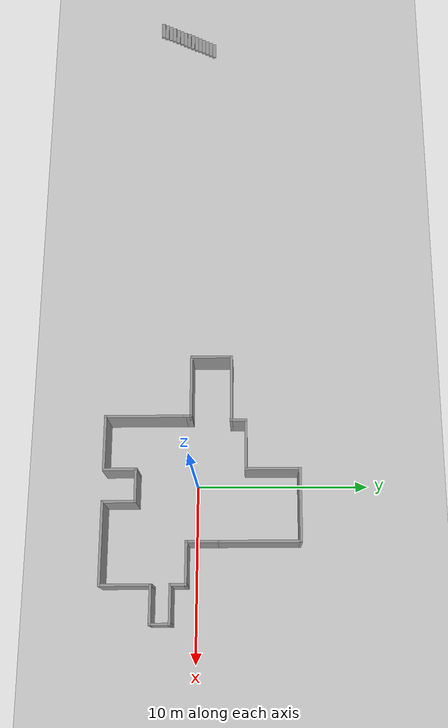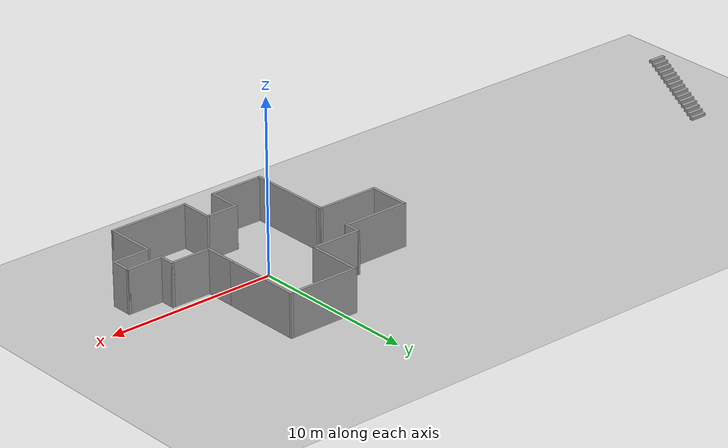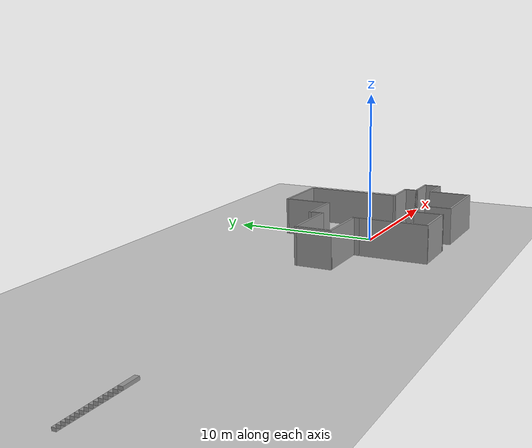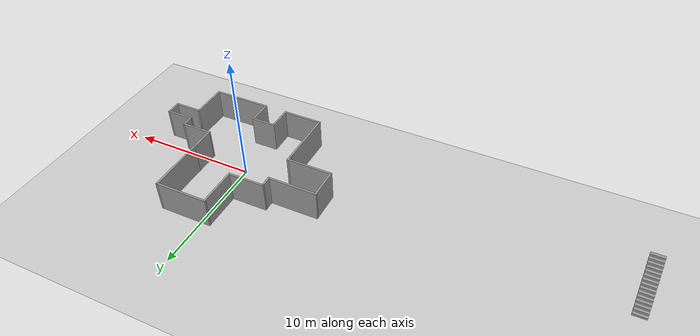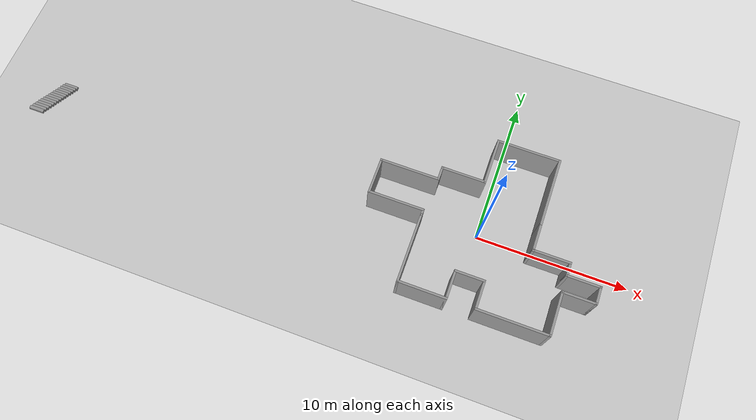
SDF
<sdf version="1.6">
 <world name="default">
  <light name="sun" type="directional">
   <pose>0 0 10 0 -0 0</pose>
   <diffuse>0.8 0.8 0.8 1</diffuse>
   <specular>0.2 0.2 0.2 1</specular>
   <attenuation>
    <range>1000</range>
    <constant>0.9</constant>
    <linear>0.01</linear>
    <quadratic>0.001</quadratic>
   </attenuation>
   <direction>-0.5 0.1 -0.9</direction>
  </light>
  <model name="ground_plane">
   <static>1</static>
   <link name="link">
    <collision name="collision">
     <geometry><plane><normal>0 0 1</normal><size>100 100</size></plane></geometry>
     <surface>
      <contact><collide_bitmask>65535</collide_bitmask></contact>
      <friction><ode><mu>100</mu><mu2>50</mu2></ode></friction>
     </surface>
    </collision>
    <visual name="visual">
     <cast_shadows>0</cast_shadows>
     <geometry><plane><normal>0 0 1</normal><size>100 100</size></plane></geometry>
     <material>
      <script><uri>file://media/materials/scripts/gazebo.material</uri><name>Gazebo/Grey</name></script>
     </material>
    </visual>
   </link>
  </model>
  <gravity>0 0 -9.8</gravity>
  <magnetic_field>6e-06 2.3e-05 -4.2e-05</magnetic_field>
  <atmosphere type="adiabatic"/>
  <physics name="default_physics" default="0" type="ode">
   <max_step_size>0.001</max_step_size>
   <real_time_factor>1</real_time_factor>
   <real_time_update_rate>1000</real_time_update_rate>
  </physics>
  <scene><ambient>0.4 0.4 0.4 1</ambient><background>0.7 0.7 0.7 1</background><shadows>1</shadows></scene>
  <spherical_coordinates>
   <surface_model>EARTH_WGS84</surface_model>
   <latitude_deg>0</latitude_deg>
   <longitude_deg>0</longitude_deg>
   <elevation>0</elevation>
   <heading_deg>0</heading_deg>
  </spherical_coordinates>
  <model name="room">
   <pose>-11.2576 0.320719 0 0 -0 0</pose>
   <link name="Stairs_0">
    <visual name="Stairs_0_Visual_0">
     <pose>-18.7163 0.414054 0.083333 0 -0 0</pose>
     <geometry><box><size>1 0.233333 0.166667</size></box></geometry>
     <material>
      <script><uri>file://media/materials/scripts/gazebo.material</uri><name>Gazebo/Grey</name></script>
      <ambient>0 0 0 1</ambient>
     </material>
     <meta><layer>0</layer></meta>
    </visual>
    <collision name="Stairs_0_Collision_0">
     <geometry><box><size>1 0.233333 0.166667</size></box></geometry>
     <pose>-18.7163 0.414054 0.083333 0 -0 0</pose>
    </collision>
    <visual name="Stairs_0_Visual_1">
     <pose>-18.7163 0.180721 0.25 0 -0 0</pose>
     <geometry><box><size>1 0.233333 0.166667</size></box></geometry>
     <material>
      <script><uri>file://media/materials/scripts/gazebo.material</uri><name>Gazebo/Grey</name></script>
      <ambient>0 0 0 1</ambient>
     </material>
     <meta><layer>0</layer></meta>
    </visual>
    <collision name="Stairs_0_Collision_1">
     <geometry><box><size>1 0.233333 0.166667</size></box></geometry>
     <pose>-18.7163 0.180721 0.25 0 -0 0</pose>
    </collision>
    <visual name="Stairs_0_Visual_2">
     <pose>-18.7163 -0.052612 0.416667 0 -0 0</pose>
     <geometry><box><size>1 0.233333 0.166667</size></box></geometry>
     <material>
      <script><uri>file://media/materials/scripts/gazebo.material</uri><name>Gazebo/Grey</name></script>
      <ambient>0 0 0 1</ambient>
     </material>
     <meta><layer>0</layer></meta>
    </visual>
    <collision name="Stairs_0_Collision_2">
     <geometry><box><size>1 0.233333 0.166667</size></box></geometry>
     <pose>-18.7163 -0.052612 0.416667 0 -0 0</pose>
    </collision>
    <visual name="Stairs_0_Visual_3">
     <pose>-18.7163 -0.285945 0.583333 0 -0 0</pose>
     <geometry><box><size>1 0.233333 0.166667</size></box></geometry>
     <material>
      <script><uri>file://media/materials/scripts/gazebo.material</uri><name>Gazebo/Grey</name></script>
      <ambient>0 0 0 1</ambient>
     </material>
     <meta><layer>0</layer></meta>
    </visual>
    <collision name="Stairs_0_Collision_3">
     <geometry><box><size>1 0.233333 0.166667</size></box></geometry>
     <pose>-18.7163 -0.285945 0.583333 0 -0 0</pose>
    </collision>
    <visual name="Stairs_0_Visual_4">
     <pose>-18.7163 -0.519279 0.75 0 -0 0</pose>
     <geometry><box><size>1 0.233333 0.166667</size></box></geometry>
     <material>
      <script><uri>file://media/materials/scripts/gazebo.material</uri><name>Gazebo/Grey</name></script>
      <ambient>0 0 0 1</ambient>
     </material>
     <meta><layer>0</layer></meta>
    </visual>
    <collision name="Stairs_0_Collision_4">
     <geometry><box><size>1 0.233333 0.166667</size></box></geometry>
     <pose>-18.7163 -0.519279 0.75 0 -0 0</pose>
    </collision>
    <visual name="Stairs_0_Visual_5">
     <pose>-18.7163 -0.752612 0.916667 0 -0 0</pose>
     <geometry><box><size>1 0.233333 0.166667</size></box></geometry>
     <material>
      <script><uri>file://media/materials/scripts/gazebo.material</uri><name>Gazebo/Grey</name></script>
      <ambient>0 0 0 1</ambient>
     </material>
     <meta><layer>0</layer></meta>
    </visual>
    <collision name="Stairs_0_Collision_5">
     <geometry><box><size>1 0.233333 0.166667</size></box></geometry>
     <pose>-18.7163 -0.752612 0.916667 0 -0 0</pose>
    </collision>
    <visual name="Stairs_0_Visual_6">
     <pose>-18.7163 -0.985945 1.08333 0 -0 0</pose>
     <geometry><box><size>1 0.233333 0.166667</size></box></geometry>
     <material>
      <script><uri>file://media/materials/scripts/gazebo.material</uri><name>Gazebo/Grey</name></script>
      <ambient>0 0 0 1</ambient>
     </material>
     <meta><layer>0</layer></meta>
    </visual>
    <collision name="Stairs_0_Collision_6">
     <geometry><box><size>1 0.233333 0.166667</size></box></geometry>
     <pose>-18.7163 -0.985945 1.08333 0 -0 0</pose>
    </collision>
    <visual name="Stairs_0_Visual_7">
     <pose>-18.7163 -1.21928 1.25 0 -0 0</pose>
     <geometry><box><size>1 0.233333 0.166667</size></box></geometry>
     <material>
      <script><uri>file://media/materials/scripts/gazebo.material</uri><name>Gazebo/Grey</name></script>
      <ambient>0 0 0 1</ambient>
     </material>
     <meta><layer>0</layer></meta>
    </visual>
    <collision name="Stairs_0_Collision_7">
     <geometry><box><size>1 0.233333 0.166667</size></box></geometry>
     <pose>-18.7163 -1.21928 1.25 0 -0 0</pose>
    </collision>
    <visual name="Stairs_0_Visual_8">
     <pose>-18.7163 -1.45261 1.41667 0 -0 0</pose>
     <geometry><box><size>1 0.233333 0.166667</size></box></geometry>
     <material>
      <script><uri>file://media/materials/scripts/gazebo.material</uri><name>Gazebo/Grey</name></script>
      <ambient>0 0 0 1</ambient>
     </material>
     <meta><layer>0</layer></meta>
    </visual>
    <collision name="Stairs_0_Collision_8">
     <geometry><box><size>1 0.233333 0.166667</size></box></geometry>
     <pose>-18.7163 -1.45261 1.41667 0 -0 0</pose>
    </collision>
    <visual name="Stairs_0_Visual_9">
     <pose>-18.7163 -1.68595 1.58333 0 -0 0</pose>
     <geometry><box><size>1 0.233333 0.166667</size></box></geometry>
     <material>
      <script><uri>file://media/materials/scripts/gazebo.material</uri><name>Gazebo/Grey</name></script>
      <ambient>0 0 0 1</ambient>
     </material>
     <meta><layer>0</layer></meta>
    </visual>
    <collision name="Stairs_0_Collision_9">
     <geometry><box><size>1 0.233333 0.166667</size></box></geometry>
     <pose>-18.7163 -1.68595 1.58333 0 -0 0</pose>
    </collision>
    <visual name="Stairs_0_Visual_10">
     <pose>-18.7163 -1.91928 1.75 0 -0 0</pose>
     <geometry><box><size>1 0.233333 0.166667</size></box></geometry>
     <material>
      <script><uri>file://media/materials/scripts/gazebo.material</uri><name>Gazebo/Grey</name></script>
      <ambient>0 0 0 1</ambient>
     </material>
     <meta><layer>0</layer></meta>
    </visual>
    <collision name="Stairs_0_Collision_10">
     <geometry><box><size>1 0.233333 0.166667</size></box></geometry>
     <pose>-18.7163 -1.91928 1.75 0 -0 0</pose>
    </collision>
    <visual name="Stairs_0_Visual_11">
     <pose>-18.7163 -2.15261 1.91667 0 -0 0</pose>
     <geometry><box><size>1 0.233333 0.166667</size></box></geometry>
     <material>
      <script><uri>file://media/materials/scripts/gazebo.material</uri><name>Gazebo/Grey</name></script>
      <ambient>0 0 0 1</ambient>
     </material>
     <meta><layer>0</layer></meta>
    </visual>
    <collision name="Stairs_0_Collision_11">
     <geometry><box><size>1 0.233333 0.166667</size></box></geometry>
     <pose>-18.7163 -2.15261 1.91667 0 -0 0</pose>
    </collision>
    <visual name="Stairs_0_Visual_12">
     <pose>-18.7163 -2.38595 2.08333 0 -0 0</pose>
     <geometry><box><size>1 0.233333 0.166667</size></box></geometry>
     <material>
      <script><uri>file://media/materials/scripts/gazebo.material</uri><name>Gazebo/Grey</name></script>
      <ambient>0 0 0 1</ambient>
     </material>
     <meta><layer>0</layer></meta>
    </visual>
    <collision name="Stairs_0_Collision_12">
     <geometry><box><size>1 0.233333 0.166667</size></box></geometry>
     <pose>-18.7163 -2.38595 2.08333 0 -0 0</pose>
    </collision>
    <visual name="Stairs_0_Visual_13">
     <pose>-18.7163 -2.61928 2.25 0 -0 0</pose>
     <geometry><box><size>1 0.233333 0.166667</size></box></geometry>
     <material>
      <script><uri>file://media/materials/scripts/gazebo.material</uri><name>Gazebo/Grey</name></script>
      <ambient>0 0 0 1</ambient>
     </material>
     <meta><layer>0</layer></meta>
    </visual>
    <collision name="Stairs_0_Collision_13">
     <geometry><box><size>1 0.233333 0.166667</size></box></geometry>
     <pose>-18.7163 -2.61928 2.25 0 -0 0</pose>
    </collision>
    <visual name="Stairs_0_Visual_14">
     <pose>-18.7163 -2.85261 2.41667 0 -0 0</pose>
     <geometry><box><size>1 0.233333 0.166667</size></box></geometry>
     <material>
      <script><uri>file://media/materials/scripts/gazebo.material</uri><name>Gazebo/Grey</name></script>
      <ambient>0 0 0 1</ambient>
     </material>
     <meta><layer>0</layer></meta>
    </visual>
    <collision name="Stairs_0_Collision_14">
     <geometry><box><size>1 0.233333 0.166667</size></box></geometry>
     <pose>-18.7163 -2.85261 2.41667 0 -0 0</pose>
    </collision>
   </link>
   <link name="Wall_0">
    <collision name="Wall_0_Collision">
     <geometry><box><size>4.75 0.15 2.5</size></box></geometry>
     <pose>0 0 1.25 0 -0 0</pose>
    </collision>
    <visual name="Wall_0_Visual">
     <pose>0 0 1.25 0 -0 0</pose>
     <geometry><box><size>4.75 0.15 2.5</size></box></geometry>
     <material>
      <script><uri>file://media/materials/scripts/gazebo.material</uri><name>Gazebo/Grey</name></script>
      <ambient>1 1 1 1</ambient>
     </material>
     <meta><layer>0</layer></meta>
    </visual>
    <pose>7.49126 -3.325 0 0 -0 -1.5708</pose>
   </link>
   <link name="Wall_1">
    <collision name="Wall_1_Collision">
     <geometry><box><size>3.25 0.15 2.5</size></box></geometry>
     <pose>0 0 1.25 0 -0 0</pose>
    </collision>
    <visual name="Wall_1_Visual">
     <pose>0 0 1.25 0 -0 0</pose>
     <geometry><box><size>3.25 0.15 2.5</size></box></geometry>
     <material>
      <script><uri>file://media/materials/scripts/gazebo.material</uri><name>Gazebo/Grey</name></script>
      <ambient>1 1 1 1</ambient>
     </material>
     <meta><layer>0</layer></meta>
    </visual>
    <pose>9.04126 -5.625 0 0 -0 0</pose>
   </link>
   <link name="Wall_10">
    <collision name="Wall_10_Collision">
     <geometry><box><size>1 0.15 2.5</size></box></geometry>
     <pose>0 0 1.25 0 -0 0</pose>
    </collision>
    <visual name="Wall_10_Visual">
     <pose>0 0 1.25 0 -0 0</pose>
     <geometry><box><size>1 0.15 2.5</size></box></geometry>
     <material>
      <script><uri>file://media/materials/scripts/gazebo.material</uri><name>Gazebo/Grey</name></script>
      <ambient>1 1 1 1</ambient>
     </material>
     <meta><layer>0</layer></meta>
    </visual>
    <pose>17.0413 -1.25 0 0 -0 1.5708</pose>
   </link>
   <link name="Wall_11">
    <collision name="Wall_11_Collision">
     <geometry><box><size>2.5 0.15 2.5</size></box></geometry>
     <pose>0 0 1.25 0 -0 0</pose>
    </collision>
    <visual name="Wall_11_Visual">
     <pose>0 0 1.25 0 -0 0</pose>
     <geometry><box><size>2.5 0.15 2.5</size></box></geometry>
     <material>
      <script><uri>file://media/materials/scripts/gazebo.material</uri><name>Gazebo/Grey</name></script>
      <ambient>1 1 1 1</ambient>
     </material>
     <meta><layer>0</layer></meta>
    </visual>
    <pose>15.8663 -0.825 0 0 -0 3.14159</pose>
   </link>
   <link name="Wall_12">
    <collision name="Wall_12_Collision">
     <geometry><box><size>2 0.15 2.5</size></box></geometry>
     <pose>0 0 1.25 0 -0 0</pose>
    </collision>
    <visual name="Wall_12_Visual">
     <pose>0 0 1.25 0 -0 0</pose>
     <geometry><box><size>2 0.15 2.5</size></box></geometry>
     <material>
      <script><uri>file://media/materials/scripts/gazebo.material</uri><name>Gazebo/Grey</name></script>
      <ambient>1 1 1 1</ambient>
     </material>
     <meta><layer>0</layer></meta>
    </visual>
    <pose>14.6913 0.1 0 0 -0 1.5708</pose>
   </link>
   <link name="Wall_13">
    <collision name="Wall_13_Collision">
     <geometry><box><size>4.75 0.15 2.5</size></box></geometry>
     <pose>0 0 1.25 0 -0 0</pose>
    </collision>
    <visual name="Wall_13_Visual">
     <pose>0 0 1.25 0 -0 0</pose>
     <geometry><box><size>4.75 0.15 2.5</size></box></geometry>
     <material>
      <script><uri>file://media/materials/scripts/gazebo.material</uri><name>Gazebo/Grey</name></script>
      <ambient>1 1 1 1</ambient>
     </material>
     <meta><layer>0</layer></meta>
    </visual>
    <pose>14.6913 3.325 0 0 -0 1.5708</pose>
   </link>
   <link name="Wall_14">
    <collision name="Wall_14_Collision">
     <geometry><box><size>4.25 0.15 2.5</size></box></geometry>
     <pose>0 0 1.25 0 -0 0</pose>
    </collision>
    <visual name="Wall_14_Visual">
     <pose>0 0 1.25 0 -0 0</pose>
     <geometry><box><size>4.25 0.15 2.5</size></box></geometry>
     <material>
      <script><uri>file://media/materials/scripts/gazebo.material</uri><name>Gazebo/Grey</name></script>
      <ambient>1 1 1 1</ambient>
     </material>
     <meta><layer>0</layer></meta>
    </visual>
    <pose>12.6413 5.625 0 0 -0 3.14159</pose>
   </link>
   <link name="Wall_15">
    <collision name="Wall_15_Collision">
     <geometry><box><size>3.25 0.15 2.5</size></box></geometry>
     <pose>0 0 1.25 0 -0 0</pose>
    </collision>
    <visual name="Wall_15_Visual">
     <pose>0 0 1.25 0 -0 0</pose>
     <geometry><box><size>3.25 0.15 2.5</size></box></geometry>
     <material>
      <script><uri>file://media/materials/scripts/gazebo.material</uri><name>Gazebo/Grey</name></script>
      <ambient>1 1 1 1</ambient>
     </material>
     <meta><layer>0</layer></meta>
    </visual>
    <pose>10.5913 4.075 0 0 -0 -1.5708</pose>
   </link>
   <link name="Wall_16">
    <collision name="Wall_16_Collision">
     <geometry><box><size>3 0.15 2.5</size></box></geometry>
     <pose>0 0 1.25 0 -0 0</pose>
    </collision>
    <visual name="Wall_16_Visual">
     <pose>0 0 1.25 0 -0 0</pose>
     <geometry><box><size>3 0.15 2.5</size></box></geometry>
     <material>
      <script><uri>file://media/materials/scripts/gazebo.material</uri><name>Gazebo/Grey</name></script>
      <ambient>1 1 1 1</ambient>
     </material>
     <meta><layer>0</layer></meta>
    </visual>
    <pose>9.16626 2.525 0 0 -0 3.14159</pose>
   </link>
   <link name="Wall_17">
    <collision name="Wall_17_Collision">
     <geometry><box><size>1 0.15 2.5</size></box></geometry>
     <pose>0 0 1.25 0 -0 0</pose>
    </collision>
    <visual name="Wall_17_Visual">
     <pose>0 0 1.25 0 -0 0</pose>
     <geometry><box><size>1 0.15 2.5</size></box></geometry>
     <material>
      <script><uri>file://media/materials/scripts/gazebo.material</uri><name>Gazebo/Grey</name></script>
      <ambient>1 1 1 1</ambient>
     </material>
     <meta><layer>0</layer></meta>
    </visual>
    <pose>7.74126 2.1 0 0 -0 -1.5708</pose>
   </link>
   <link name="Wall_18">
    <collision name="Wall_18_Collision">
     <geometry><box><size>4 0.15 2.5</size></box></geometry>
     <pose>0 0 1.25 0 -0 0</pose>
    </collision>
    <visual name="Wall_18_Visual">
     <pose>0 0 1.25 0 -0 0</pose>
     <geometry><box><size>4 0.15 2.5</size></box></geometry>
     <material>
      <script><uri>file://media/materials/scripts/gazebo.material</uri><name>Gazebo/Grey</name></script>
      <ambient>1 1 1 1</ambient>
     </material>
     <meta><layer>0</layer></meta>
    </visual>
    <pose>5.81626 1.675 0 0 -0 3.14159</pose>
   </link>
   <link name="Wall_19">
    <collision name="Wall_19_Collision">
     <geometry><box><size>2.5 0.15 2.5</size></box></geometry>
     <pose>0 0 1.25 0 -0 0</pose>
    </collision>
    <visual name="Wall_19_Visual">
     <pose>0 0 1.25 0 -0 0</pose>
     <geometry><box><size>2.5 0.15 2.5</size></box></geometry>
     <material>
      <script><uri>file://media/materials/scripts/gazebo.material</uri><name>Gazebo/Grey</name></script>
      <ambient>1 1 1 1</ambient>
     </material>
     <meta><layer>0</layer></meta>
    </visual>
    <pose>3.89126 0.5 0 0 -0 -1.5708</pose>
   </link>
   <link name="Wall_2">
    <collision name="Wall_2_Collision">
     <geometry><box><size>2 0.15 2.5</size></box></geometry>
     <pose>0 0 1.25 0 -0 0</pose>
    </collision>
    <visual name="Wall_2_Visual">
     <pose>0 0 1.25 0 -0 0</pose>
     <geometry><box><size>2 0.15 2.5</size></box></geometry>
     <material>
      <script><uri>file://media/materials/scripts/gazebo.material</uri><name>Gazebo/Grey</name></script>
      <ambient>1 1 1 1</ambient>
     </material>
     <meta><layer>0</layer></meta>
    </visual>
    <pose>10.5913 -4.7 0 0 -0 1.5708</pose>
   </link>
   <link name="Wall_20">
    <collision name="Wall_20_Collision">
     <geometry><box><size>3.75 0.15 2.5</size></box></geometry>
     <pose>0 0 1.25 0 -0 0</pose>
    </collision>
    <visual name="Wall_20_Visual">
     <pose>0 0 1.25 0 -0 0</pose>
     <geometry><box><size>3.75 0.15 2.5</size></box></geometry>
     <material>
      <script><uri>file://media/materials/scripts/gazebo.material</uri><name>Gazebo/Grey</name></script>
      <ambient>1 1 1 1</ambient>
     </material>
     <meta><layer>0</layer></meta>
    </visual>
    <pose>5.69126 -0.675 0 0 -0 0</pose>
   </link>
   <link name="Wall_21">
    <collision name="Wall_21_Collision">
     <geometry><box><size>0.5 0.15 2.5</size></box></geometry>
     <pose>0 0 1.25 0 -0 0</pose>
    </collision>
    <visual name="Wall_21_Visual">
     <pose>0 0 1.25 0 -0 0</pose>
     <geometry><box><size>0.5 0.15 2.5</size></box></geometry>
     <material>
      <script><uri>file://media/materials/scripts/gazebo.material</uri><name>Gazebo/Grey</name></script>
      <ambient>1 1 1 1</ambient>
     </material>
     <meta><layer>0</layer></meta>
    </visual>
    <pose>7.49126 -0.85 0 0 -0 -1.5708</pose>
   </link>
   <link name="Wall_3">
    <collision name="Wall_3_Collision">
     <geometry><box><size>2 0.15 2.5</size></box></geometry>
     <pose>0 0 1.25 0 -0 0</pose>
    </collision>
    <visual name="Wall_3_Visual">
     <pose>0 0 1.25 0 -0 0</pose>
     <geometry><box><size>2 0.15 2.5</size></box></geometry>
     <material>
      <script><uri>file://media/materials/scripts/gazebo.material</uri><name>Gazebo/Grey</name></script>
      <ambient>1 1 1 1</ambient>
     </material>
     <meta><layer>0</layer></meta>
    </visual>
    <pose>11.5163 -3.775 0 0 -0 0</pose>
   </link>
   <link name="Wall_4">
    <collision name="Wall_4_Collision">
     <geometry><box><size>2 0.15 2.5</size></box></geometry>
     <pose>0 0 1.25 0 -0 0</pose>
    </collision>
    <visual name="Wall_4_Visual">
     <pose>0 0 1.25 0 -0 0</pose>
     <geometry><box><size>2 0.15 2.5</size></box></geometry>
     <material>
      <script><uri>file://media/materials/scripts/gazebo.material</uri><name>Gazebo/Grey</name></script>
      <ambient>1 1 1 1</ambient>
     </material>
     <meta><layer>0</layer></meta>
    </visual>
    <pose>12.4413 -4.7 0 0 -0 -1.5708</pose>
   </link>
   <link name="Wall_5">
    <collision name="Wall_5_Collision">
     <geometry><box><size>4.75 0.15 2.5</size></box></geometry>
     <pose>0 0 1.25 0 -0 0</pose>
    </collision>
    <visual name="Wall_5_Visual">
     <pose>0 0 1.25 0 -0 0</pose>
     <geometry><box><size>4.75 0.15 2.5</size></box></geometry>
     <material>
      <script><uri>file://media/materials/scripts/gazebo.material</uri><name>Gazebo/Grey</name></script>
      <ambient>1 1 1 1</ambient>
     </material>
     <meta><layer>0</layer></meta>
    </visual>
    <pose>14.7413 -5.625 0 0 -0 0</pose>
   </link>
   <link name="Wall_6">
    <collision name="Wall_6_Collision">
     <geometry><box><size>3 0.15 2.5</size></box></geometry>
     <pose>0 0 1.25 0 -0 0</pose>
    </collision>
    <visual name="Wall_6_Visual">
     <pose>0 0 1.25 0 -0 0</pose>
     <geometry><box><size>3 0.15 2.5</size></box></geometry>
     <material>
      <script><uri>file://media/materials/scripts/gazebo.material</uri><name>Gazebo/Grey</name></script>
      <ambient>1 1 1 1</ambient>
     </material>
     <meta><layer>0</layer></meta>
    </visual>
    <pose>17.0413 -4.2 0 0 -0 1.5708</pose>
   </link>
   <link name="Wall_7">
    <collision name="Wall_7_Collision">
     <geometry><box><size>2.25 0.15 2.5</size></box></geometry>
     <pose>0 0 1.25 0 -0 0</pose>
    </collision>
    <visual name="Wall_7_Visual">
     <pose>0 0 1.25 0 -0 0</pose>
     <geometry><box><size>2.25 0.15 2.5</size></box></geometry>
     <material>
      <script><uri>file://media/materials/scripts/gazebo.material</uri><name>Gazebo/Grey</name></script>
      <ambient>1 1 1 1</ambient>
     </material>
     <meta><layer>0</layer></meta>
    </visual>
    <pose>18.0913 -2.775 0 0 -0 0</pose>
   </link>
   <link name="Wall_8">
    <collision name="Wall_8_Collision">
     <geometry><box><size>1.25 0.15 2.5</size></box></geometry>
     <pose>0 0 1.25 0 -0 0</pose>
    </collision>
    <visual name="Wall_8_Visual">
     <pose>0 0 1.25 0 -0 0</pose>
     <geometry><box><size>1.25 0.15 2.5</size></box></geometry>
     <material>
      <script><uri>file://media/materials/scripts/gazebo.material</uri><name>Gazebo/Grey</name></script>
      <ambient>1 1 1 1</ambient>
     </material>
     <meta><layer>0</layer></meta>
    </visual>
    <pose>19.1413 -2.225 0 0 -0 1.5708</pose>
   </link>
   <link name="Wall_9">
    <collision name="Wall_9_Collision">
     <geometry><box><size>2.25 0.15 2.5</size></box></geometry>
     <pose>0 0 1.25 0 -0 0</pose>
    </collision>
    <visual name="Wall_9_Visual">
     <pose>0 0 1.25 0 -0 0</pose>
     <geometry><box><size>2.25 0.15 2.5</size></box></geometry>
     <material>
      <script><uri>file://media/materials/scripts/gazebo.material</uri><name>Gazebo/Grey</name></script>
      <ambient>1 1 1 1</ambient>
     </material>
     <meta><layer>0</layer></meta>
    </visual>
    <pose>18.0913 -1.675 0 0 -0 3.14159</pose>
   </link>
   <static>1</static>
  </model>
 </world>
</sdf>
